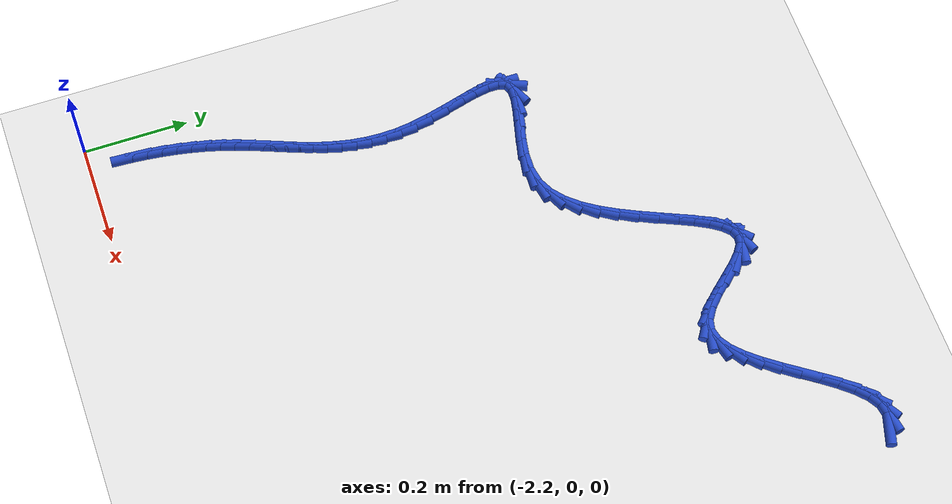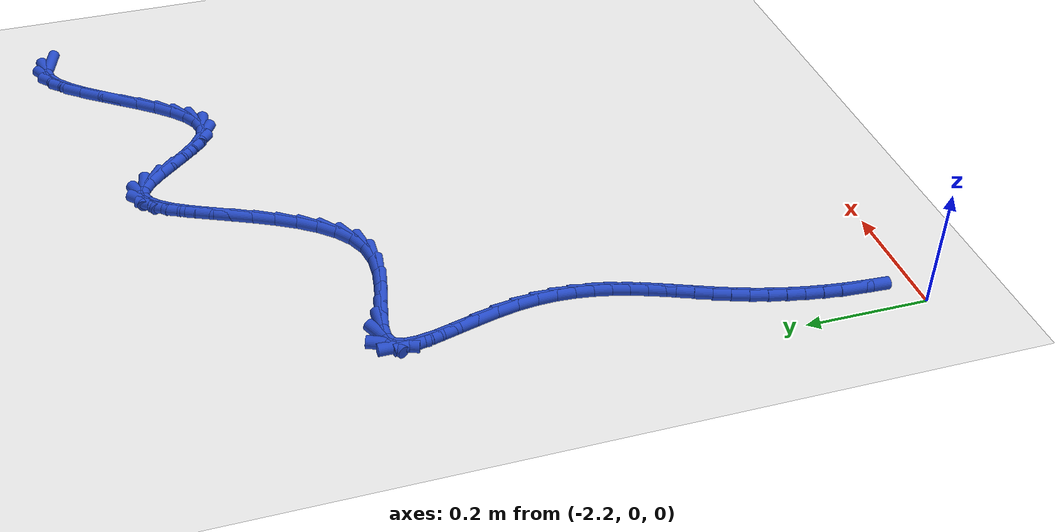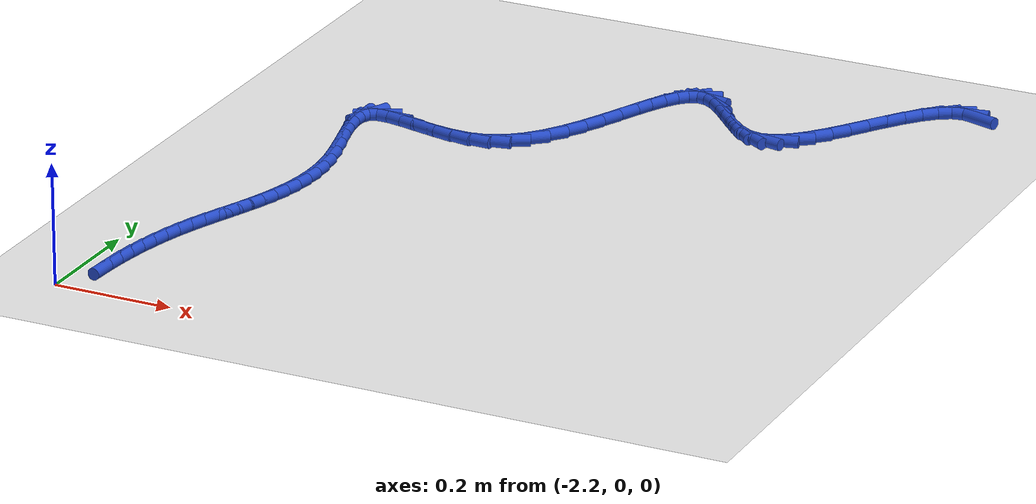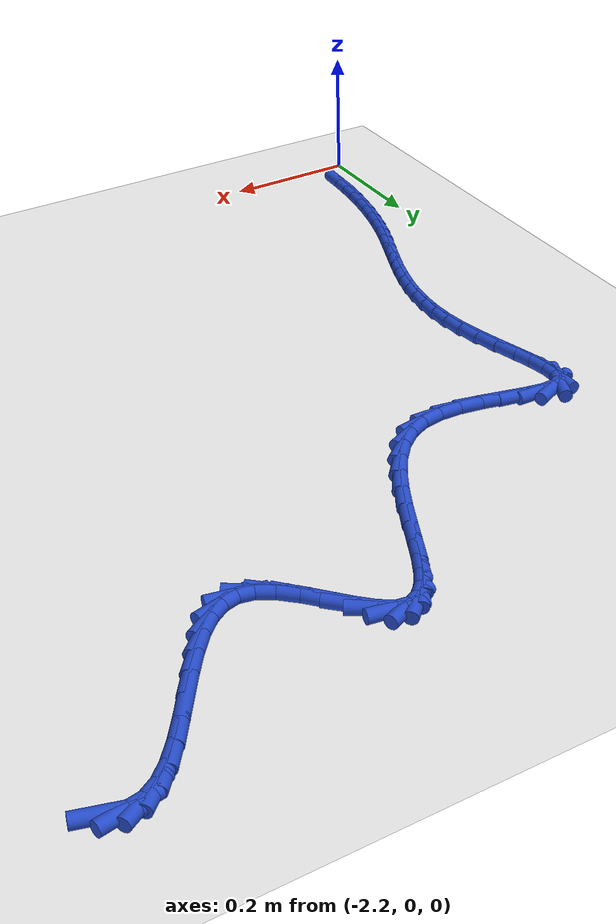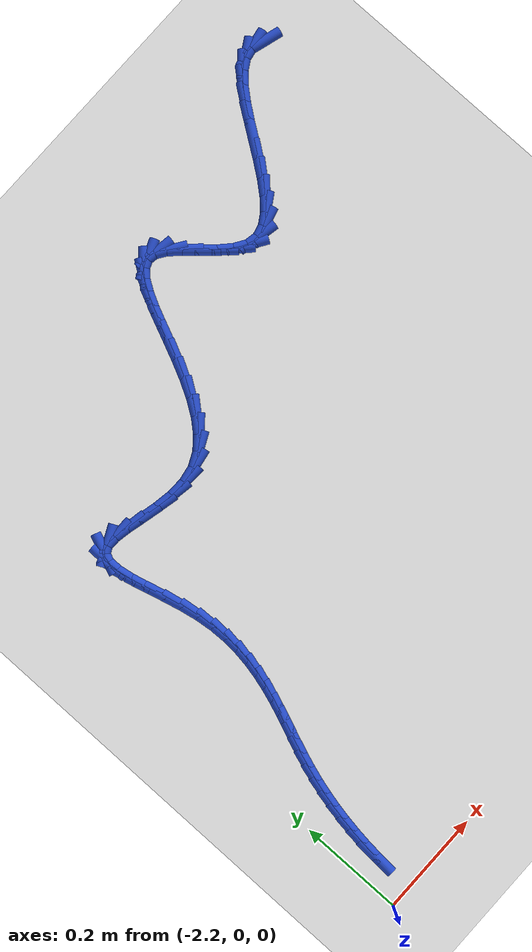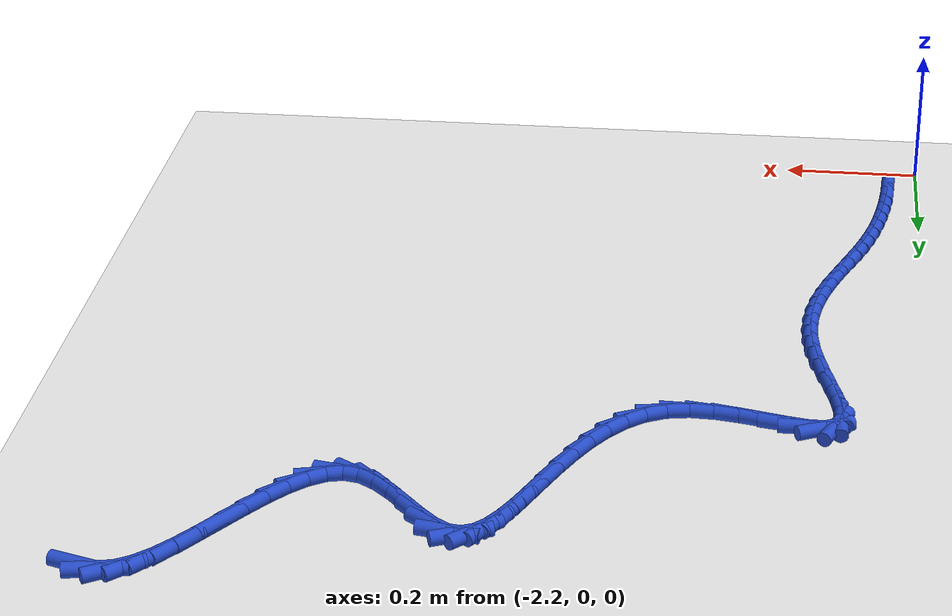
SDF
<sdf version="1.6">
 <world name="default">
  <model name="ground_plane">
   <static>1</static>
   <link name="link">
    <collision name="collision">
     <geometry><plane><normal>0 0 1</normal><size>100 100</size></plane></geometry>
     <surface><friction><ode><mu>100</mu><mu2>50</mu2></ode></friction></surface>
    </collision>
    <visual name="visual">
     <cast_shadows>0</cast_shadows>
     <geometry><plane><normal>0 0 1</normal><size>100 100</size></plane></geometry>
     <material>
      <script><uri>file://media/materials/scripts/gazebo.material</uri><name>Gazebo/WhiteGlow</name></script>
     </material>
    </visual>
   </link>
  </model>
  <model name="line">
   <link name="link_70">
    <pose>-1.1905179560982302 1.21783999540717 0.01 0 1.57 -0.2906038695124868</pose>
    <collision name="collision">
     <geometry><cylinder><radius>0.01</radius><length>0.08</length></cylinder></geometry>
    </collision>
    <visual name="visual">
     <material>
      <script><name>Gazebo/Blue</name><uri>file://media/materials/scripts/gazebo.material</uri></script>
     </material>
     <geometry><cylinder><radius>0.01</radius><length>0.08</length></cylinder></geometry>
    </visual>
   </link>
   <link name="link_71">
    <pose>-1.2112301351048769 1.224034398161707 0.01 0 1.57 0.17792155601959042</pose>
    <collision name="collision">
     <geometry><cylinder><radius>0.01</radius><length>0.08</length></cylinder></geometry>
    </collision>
    <visual name="visual">
     <material>
      <script><name>Gazebo/Blue</name><uri>file://media/materials/scripts/gazebo.material</uri></script>
     </material>
     <geometry><cylinder><radius>0.01</radius><length>0.08</length></cylinder></geometry>
    </visual>
   </link>
   <link name="link_72">
    <pose>-1.231911772914702 1.2203153625485805 0.01 0 1.57 0.538124500748423</pose>
    <collision name="collision">
     <geometry><cylinder><radius>0.01</radius><length>0.08</length></cylinder></geometry>
    </collision>
    <visual name="visual">
     <material>
      <script><name>Gazebo/Blue</name><uri>file://media/materials/scripts/gazebo.material</uri></script>
     </material>
     <geometry><cylinder><radius>0.01</radius><length>0.08</length></cylinder></geometry>
    </visual>
   </link>
   <link name="link_73">
    <pose>-1.2525903008696813 1.2079726989447712 0.01 0 1.57 0.7497829378314184</pose>
    <collision name="collision">
     <geometry><cylinder><radius>0.01</radius><length>0.08</length></cylinder></geometry>
    </collision>
    <visual name="visual">
     <material>
      <script><name>Gazebo/Blue</name><uri>file://media/materials/scripts/gazebo.material</uri></script>
     </material>
     <geometry><cylinder><radius>0.01</radius><length>0.08</length></cylinder></geometry>
    </visual>
   </link>
   <link name="link_74">
    <pose>-1.2732890721466708 1.1886981874010296 0.01 0 1.57 0.8685569368021363</pose>
    <collision name="collision">
     <geometry><cylinder><radius>0.01</radius><length>0.08</length></cylinder></geometry>
    </collision>
    <visual name="visual">
     <material>
      <script><name>Gazebo/Blue</name><uri>file://media/materials/scripts/gazebo.material</uri></script>
     </material>
     <geometry><cylinder><radius>0.01</radius><length>0.08</length></cylinder></geometry>
    </visual>
   </link>
   <link name="link_75">
    <pose>-1.2940314399225274 1.1641836079681072 0.01 0 1.57 0.9327413237555071</pose>
    <collision name="collision">
     <geometry><cylinder><radius>0.01</radius><length>0.08</length></cylinder></geometry>
    </collision>
    <visual name="visual">
     <material>
      <script><name>Gazebo/Blue</name><uri>file://media/materials/scripts/gazebo.material</uri></script>
     </material>
     <geometry><cylinder><radius>0.01</radius><length>0.08</length></cylinder></geometry>
    </visual>
   </link>
   <link name="link_76">
    <pose>-1.3148407573741077 1.1361207406967553 0.01 0 1.57 0.9610567395438101</pose>
    <collision name="collision">
     <geometry><cylinder><radius>0.01</radius><length>0.08</length></cylinder></geometry>
    </collision>
    <visual name="visual">
     <material>
      <script><name>Gazebo/Blue</name><uri>file://media/materials/scripts/gazebo.material</uri></script>
     </material>
     <geometry><cylinder><radius>0.01</radius><length>0.08</length></cylinder></geometry>
    </visual>
   </link>
   <link name="link_77">
    <pose>-1.3357403776782686 1.1062013656377245 0.01 0 1.57 0.9610882715544714</pose>
    <collision name="collision">
     <geometry><cylinder><radius>0.01</radius><length>0.08</length></cylinder></geometry>
    </collision>
    <visual name="visual">
     <material>
      <script><name>Gazebo/Blue</name><uri>file://media/materials/scripts/gazebo.material</uri></script>
     </material>
     <geometry><cylinder><radius>0.01</radius><length>0.08</length></cylinder></geometry>
    </visual>
   </link>
   <link name="link_78">
    <pose>-1.3567536540118648 1.076117262841766 0.01 0 1.57 0.9333172915132587</pose>
    <collision name="collision">
     <geometry><cylinder><radius>0.01</radius><length>0.08</length></cylinder></geometry>
    </collision>
    <visual name="visual">
     <material>
      <script><name>Gazebo/Blue</name><uri>file://media/materials/scripts/gazebo.material</uri></script>
     </material>
     <geometry><cylinder><radius>0.01</radius><length>0.08</length></cylinder></geometry>
    </visual>
   </link>
   <link name="link_79">
    <pose>-1.377903939551754 1.0475602123596304 0.01 0 1.57 0.8715225979296982</pose>
    <collision name="collision">
     <geometry><cylinder><radius>0.01</radius><length>0.08</length></cylinder></geometry>
    </collision>
    <visual name="visual">
     <material>
      <script><name>Gazebo/Blue</name><uri>file://media/materials/scripts/gazebo.material</uri></script>
     </material>
     <geometry><cylinder><radius>0.01</radius><length>0.08</length></cylinder></geometry>
    </visual>
   </link>
   <link name="link_80">
    <pose>-1.3992145874747925 1.0222219942420692 0.01 0 1.57 0.7599573827150676</pose>
    <collision name="collision">
     <geometry><cylinder><radius>0.01</radius><length>0.08</length></cylinder></geometry>
    </collision>
    <visual name="visual">
     <material>
      <script><name>Gazebo/Blue</name><uri>file://media/materials/scripts/gazebo.material</uri></script>
     </material>
     <geometry><cylinder><radius>0.01</radius><length>0.08</length></cylinder></geometry>
    </visual>
   </link>
   <link name="link_81">
    <pose>-1.4207089509578372 1.0017943885398326 0.01 0 1.57 0.5672279475120907</pose>
    <collision name="collision">
     <geometry><cylinder><radius>0.01</radius><length>0.08</length></cylinder></geometry>
    </collision>
    <visual name="visual">
     <material>
      <script><name>Gazebo/Blue</name><uri>file://media/materials/scripts/gazebo.material</uri></script>
     </material>
     <geometry><cylinder><radius>0.01</radius><length>0.08</length></cylinder></geometry>
    </visual>
   </link>
   <link name="link_82">
    <pose>-1.4424103831777435 0.9879691753036718 0.01 0 1.57 0.24704076534031452</pose>
    <collision name="collision">
     <geometry><cylinder><radius>0.01</radius><length>0.08</length></cylinder></geometry>
    </collision>
    <visual name="visual">
     <material>
      <script><name>Gazebo/Blue</name><uri>file://media/materials/scripts/gazebo.material</uri></script>
     </material>
     <geometry><cylinder><radius>0.01</radius><length>0.08</length></cylinder></geometry>
    </visual>
   </link>
   <link name="link_83">
    <pose>-1.4643422373113688 0.9824381345843383 0.01 0 1.57 -0.19712962538211304</pose>
    <collision name="collision">
     <geometry><cylinder><radius>0.01</radius><length>0.08</length></cylinder></geometry>
    </collision>
    <visual name="visual">
     <material>
      <script><name>Gazebo/Blue</name><uri>file://media/materials/scripts/gazebo.material</uri></script>
     </material>
     <geometry><cylinder><radius>0.01</radius><length>0.08</length></cylinder></geometry>
    </visual>
   </link>
   <link name="link_84">
    <pose>-1.4865262591945605 0.986868803811247 0.01 0 1.57 -0.5676000527672778</pose>
    <collision name="collision">
     <geometry><cylinder><radius>0.01</radius><length>0.08</length></cylinder></geometry>
    </collision>
    <visual name="visual">
     <material>
      <script><name>Gazebo/Blue</name><uri>file://media/materials/scripts/gazebo.material</uri></script>
     </material>
     <geometry><cylinder><radius>0.01</radius><length>0.08</length></cylinder></geometry>
    </visual>
   </link>
   <link name="link_85">
    <pose>-1.508863666527905 1.0011108622686788 0.01 0 1.57 -0.7543722065979216</pose>
    <collision name="collision">
     <geometry><cylinder><radius>0.01</radius><length>0.08</length></cylinder></geometry>
    </collision>
    <visual name="visual">
     <material>
      <script><name>Gazebo/Blue</name><uri>file://media/materials/scripts/gazebo.material</uri></script>
     </material>
     <geometry><cylinder><radius>0.01</radius><length>0.08</length></cylinder></geometry>
    </visual>
   </link>
   <link name="link_86">
    <pose>-1.5310535089182724 1.021964801472066 0.01 0 1.57 -0.8346601962940435</pose>
    <collision name="collision">
     <geometry><cylinder><radius>0.01</radius><length>0.08</length></cylinder></geometry>
    </collision>
    <visual name="visual">
     <material>
      <script><name>Gazebo/Blue</name><uri>file://media/materials/scripts/gazebo.material</uri></script>
     </material>
     <geometry><cylinder><radius>0.01</radius><length>0.08</length></cylinder></geometry>
    </visual>
   </link>
   <link name="link_87">
    <pose>-1.5527755185682799 1.0459397593820037 0.01 0 1.57 -0.8453009052203749</pose>
    <collision name="collision">
     <geometry><cylinder><radius>0.01</radius><length>0.08</length></cylinder></geometry>
    </collision>
    <visual name="visual">
     <material>
      <script><name>Gazebo/Blue</name><uri>file://media/materials/scripts/gazebo.material</uri></script>
     </material>
     <geometry><cylinder><radius>0.01</radius><length>0.08</length></cylinder></geometry>
    </visual>
   </link>
   <link name="link_88">
    <pose>-1.5737094276805443 1.069544873959086 0.01 0 1.57 -0.7833478333196037</pose>
    <collision name="collision">
     <geometry><cylinder><radius>0.01</radius><length>0.08</length></cylinder></geometry>
    </collision>
    <visual name="visual">
     <material>
      <script><name>Gazebo/Blue</name><uri>file://media/materials/scripts/gazebo.material</uri></script>
     </material>
     <geometry><cylinder><radius>0.01</radius><length>0.08</length></cylinder></geometry>
    </visual>
   </link>
   <link name="link_89">
    <pose>-1.593534968457681 1.0892892831639074 0.01 0 1.57 -0.5928325110588228</pose>
    <collision name="collision">
     <geometry><cylinder><radius>0.01</radius><length>0.08</length></cylinder></geometry>
    </collision>
    <visual name="visual">
     <material>
      <script><name>Gazebo/Blue</name><uri>file://media/materials/scripts/gazebo.material</uri></script>
     </material>
     <geometry><cylinder><radius>0.01</radius><length>0.08</length></cylinder></geometry>
    </visual>
   </link>
   <link name="link_90">
    <pose>-1.6119319546492148 1.1016827034170293 0.01 0 1.57 -0.1527809737404001</pose>
    <collision name="collision">
     <geometry><cylinder><radius>0.01</radius><length>0.08</length></cylinder></geometry>
    </collision>
    <visual name="visual">
     <material>
      <script><name>Gazebo/Blue</name><uri>file://media/materials/scripts/gazebo.material</uri></script>
     </material>
     <geometry><cylinder><radius>0.01</radius><length>0.08</length></cylinder></geometry>
    </visual>
   </link>
   <link name="link_91">
    <pose>-1.6287259380444379 1.1042686563935358 0.01 0 1.57 0.3986107977285948</pose>
    <collision name="collision">
     <geometry><cylinder><radius>0.01</radius><length>0.08</length></cylinder></geometry>
    </collision>
    <visual name="visual">
     <material>
      <script><name>Gazebo/Blue</name><uri>file://media/materials/scripts/gazebo.material</uri></script>
     </material>
     <geometry><cylinder><radius>0.01</radius><length>0.08</length></cylinder></geometry>
    </visual>
   </link>
   <link name="link_92">
    <pose>-1.6441887505630648 1.0977563900576166 0.01 0 1.57 0.7787538861293155</pose>
    <collision name="collision">
     <geometry><cylinder><radius>0.01</radius><length>0.08</length></cylinder></geometry>
    </collision>
    <visual name="visual">
     <material>
      <script><name>Gazebo/Blue</name><uri>file://media/materials/scripts/gazebo.material</uri></script>
     </material>
     <geometry><cylinder><radius>0.01</radius><length>0.08</length></cylinder></geometry>
    </visual>
   </link>
   <link name="link_93">
    <pose>-1.6586773568204445 1.0834590484339426 0.01 0 1.57 0.9819547717365439</pose>
    <collision name="collision">
     <geometry><cylinder><radius>0.01</radius><length>0.08</length></cylinder></geometry>
    </collision>
    <visual name="visual">
     <material>
      <script><name>Gazebo/Blue</name><uri>file://media/materials/scripts/gazebo.material</uri></script>
     </material>
     <geometry><cylinder><radius>0.01</radius><length>0.08</length></cylinder></geometry>
    </visual>
   </link>
   <link name="link_94">
    <pose>-1.6725487214319237 1.062689775547183 0.01 0 1.57 1.087383913995369</pose>
    <collision name="collision">
     <geometry><cylinder><radius>0.01</radius><length>0.08</length></cylinder></geometry>
    </collision>
    <visual name="visual">
     <material>
      <script><name>Gazebo/Blue</name><uri>file://media/materials/scripts/gazebo.material</uri></script>
     </material>
     <geometry><cylinder><radius>0.01</radius><length>0.08</length></cylinder></geometry>
    </visual>
   </link>
   <link name="link_95">
    <pose>-1.6861598090128505 1.0367617154220081 0.01 0 1.57 1.1393285432176934</pose>
    <collision name="collision">
     <geometry><cylinder><radius>0.01</radius><length>0.08</length></cylinder></geometry>
    </collision>
    <visual name="visual">
     <material>
      <script><name>Gazebo/Blue</name><uri>file://media/materials/scripts/gazebo.material</uri></script>
     </material>
     <geometry><cylinder><radius>0.01</radius><length>0.08</length></cylinder></geometry>
    </visual>
   </link>
   <link name="link_96">
    <pose>-1.6998675841785749 1.0069880120830887 0.01 0 1.57 1.1576725747561032</pose>
    <collision name="collision">
     <geometry><cylinder><radius>0.01</radius><length>0.08</length></cylinder></geometry>
    </collision>
    <visual name="visual">
     <material>
      <script><name>Gazebo/Blue</name><uri>file://media/materials/scripts/gazebo.material</uri></script>
     </material>
     <geometry><cylinder><radius>0.01</radius><length>0.08</length></cylinder></geometry>
    </visual>
   </link>
   <link name="link_97">
    <pose>-1.7140290115444432 0.9746818095550941 0.01 0 1.57 1.150785123153018</pose>
    <collision name="collision">
     <geometry><cylinder><radius>0.01</radius><length>0.08</length></cylinder></geometry>
    </collision>
    <visual name="visual">
     <material>
      <script><name>Gazebo/Blue</name><uri>file://media/materials/scripts/gazebo.material</uri></script>
     </material>
     <geometry><cylinder><radius>0.01</radius><length>0.08</length></cylinder></geometry>
    </visual>
   </link>
   <link name="link_98">
    <pose>-1.7290010557258049 0.9411562518626947 0.01 0 1.57 1.1210330506621502</pose>
    <collision name="collision">
     <geometry><cylinder><radius>0.01</radius><length>0.08</length></cylinder></geometry>
    </collision>
    <visual name="visual">
     <material>
      <script><name>Gazebo/Blue</name><uri>file://media/materials/scripts/gazebo.material</uri></script>
     </material>
     <geometry><cylinder><radius>0.01</radius><length>0.08</length></cylinder></geometry>
    </visual>
   </link>
   <link name="link_99">
    <pose>-1.7451406813380073 0.9077244830305606 0.01 0 1.57 1.066742964812412</pose>
    <collision name="collision">
     <geometry><cylinder><radius>0.01</radius><length>0.08</length></cylinder></geometry>
    </collision>
    <visual name="visual">
     <material>
      <script><name>Gazebo/Blue</name><uri>file://media/materials/scripts/gazebo.material</uri></script>
     </material>
     <geometry><cylinder><radius>0.01</radius><length>0.08</length></cylinder></geometry>
    </visual>
   </link>
   <link name="link_100">
    <pose>-1.7628048529963987 0.8756996470833619 0.01 0 1.57 0.9825769700087346</pose>
    <collision name="collision">
     <geometry><cylinder><radius>0.01</radius><length>0.08</length></cylinder></geometry>
    </collision>
    <visual name="visual">
     <material>
      <script><name>Gazebo/Blue</name><uri>file://media/materials/scripts/gazebo.material</uri></script>
     </material>
     <geometry><cylinder><radius>0.01</radius><length>0.08</length></cylinder></geometry>
    </visual>
   </link>
   <link name="link_101">
    <pose>-1.7823505353163278 0.8463948880457686 0.01 0 1.57 0.8593746829179938</pose>
    <collision name="collision">
     <geometry><cylinder><radius>0.01</radius><length>0.08</length></cylinder></geometry>
    </collision>
    <visual name="visual">
     <material>
      <script><name>Gazebo/Blue</name><uri>file://media/materials/scripts/gazebo.material</uri></script>
     </material>
     <geometry><cylinder><radius>0.01</radius><length>0.08</length></cylinder></geometry>
    </visual>
   </link>
   <link name="link_102">
    <pose>-1.8041346929131419 0.8211233499424513 0.01 0 1.57 0.6851943787268671</pose>
    <collision name="collision">
     <geometry><cylinder><radius>0.01</radius><length>0.08</length></cylinder></geometry>
    </collision>
    <visual name="visual">
     <material>
      <script><name>Gazebo/Blue</name><uri>file://media/materials/scripts/gazebo.material</uri></script>
     </material>
     <geometry><cylinder><radius>0.01</radius><length>0.08</length></cylinder></geometry>
    </visual>
   </link>
   <link name="link_103">
    <pose>-1.8285142904021905 0.8011981767980791 0.01 0 1.57 0.4518613509326918</pose>
    <collision name="collision">
     <geometry><cylinder><radius>0.01</radius><length>0.08</length></cylinder></geometry>
    </collision>
    <visual name="visual">
     <material>
      <script><name>Gazebo/Blue</name><uri>file://media/materials/scripts/gazebo.material</uri></script>
     </material>
     <geometry><cylinder><radius>0.01</radius><length>0.08</length></cylinder></geometry>
    </visual>
   </link>
   <link name="link_104">
    <pose>-1.8558462923988206 0.7879325126373227 0.01 0 1.57 0.1790913475109051</pose>
    <collision name="collision">
     <geometry><cylinder><radius>0.01</radius><length>0.08</length></cylinder></geometry>
    </collision>
    <visual name="visual">
     <material>
      <script><name>Gazebo/Blue</name><uri>file://media/materials/scripts/gazebo.material</uri></script>
     </material>
     <geometry><cylinder><radius>0.01</radius><length>0.08</length></cylinder></geometry>
    </visual>
   </link>
   <link name="link_105">
    <pose>-1.8863647912788006 0.7824077199952238 0.01 0 1.57 -0.03448245643375636</pose>
    <collision name="collision">
     <geometry><cylinder><radius>0.01</radius><length>0.08</length></cylinder></geometry>
    </collision>
    <visual name="visual">
     <material>
      <script><name>Gazebo/Blue</name><uri>file://media/materials/scripts/gazebo.material</uri></script>
     </material>
     <geometry><cylinder><radius>0.01</radius><length>0.08</length></cylinder></geometry>
    </visual>
   </link>
   <link name="link_106">
    <pose>-1.9191554838623974 0.78353887198746 0.01 0 1.57 -0.16321234477778082</pose>
    <collision name="collision">
     <geometry><cylinder><radius>0.01</radius><length>0.08</length></cylinder></geometry>
    </collision>
    <visual name="visual">
     <material>
      <script><name>Gazebo/Blue</name><uri>file://media/materials/scripts/gazebo.material</uri></script>
     </material>
     <geometry><cylinder><radius>0.01</radius><length>0.08</length></cylinder></geometry>
    </visual>
   </link>
   <link name="link_107">
    <pose>-1.9526775426981908 0.7890591903247365 0.01 0 1.57 -0.22921188614324312</pose>
    <collision name="collision">
     <geometry><cylinder><radius>0.01</radius><length>0.08</length></cylinder></geometry>
    </collision>
    <visual name="visual">
     <material>
      <script><name>Gazebo/Blue</name><uri>file://media/materials/scripts/gazebo.material</uri></script>
     </material>
     <geometry><cylinder><radius>0.01</radius><length>0.08</length></cylinder></geometry>
    </visual>
   </link>
   <link name="link_108">
    <pose>-1.9853838135797384 0.796689962169253 0.01 0 1.57 -0.2411499435489797</pose>
    <collision name="collision">
     <geometry><cylinder><radius>0.01</radius><length>0.08</length></cylinder></geometry>
    </collision>
    <visual name="visual">
     <material>
      <script><name>Gazebo/Blue</name><uri>file://media/materials/scripts/gazebo.material</uri></script>
     </material>
     <geometry><cylinder><radius>0.01</radius><length>0.08</length></cylinder></geometry>
    </visual>
   </link>
   <link name="link_109">
    <pose>-2.0157271423006007 0.8041524746832108 0.01 0 1.57 -0.18751460277190365</pose>
    <collision name="collision">
     <geometry><cylinder><radius>0.01</radius><length>0.08</length></cylinder></geometry>
    </collision>
    <visual name="visual">
     <material>
      <script><name>Gazebo/Blue</name><uri>file://media/materials/scripts/gazebo.material</uri></script>
     </material>
     <geometry><cylinder><radius>0.01</radius><length>0.08</length></cylinder></geometry>
    </visual>
   </link>
   <link name="link_110">
    <pose>-2.042160374654334 0.8091680150288088 0.01 0 1.57 -0.013817560263368075</pose>
    <collision name="collision">
     <geometry><cylinder><radius>0.01</radius><length>0.08</length></cylinder></geometry>
    </collision>
    <visual name="visual">
     <material>
      <script><name>Gazebo/Blue</name><uri>file://media/materials/scripts/gazebo.material</uri></script>
     </material>
     <geometry><cylinder><radius>0.01</radius><length>0.08</length></cylinder></geometry>
    </visual>
   </link>
   <link name="link_111">
    <pose>-2.0631363564344998 0.8094578703682485 0.01 0 1.57 0.447551578379677</pose>
    <collision name="collision">
     <geometry><cylinder><radius>0.01</radius><length>0.08</length></cylinder></geometry>
    </collision>
    <visual name="visual">
     <material>
      <script><name>Gazebo/Blue</name><uri>file://media/materials/scripts/gazebo.material</uri></script>
     </material>
     <geometry><cylinder><radius>0.01</radius><length>0.08</length></cylinder></geometry>
    </visual>
   </link>
   <link name="link_112">
    <pose>-2.077112510731202 0.8027487728403483 0.01 0 1.57 1.1684990110235252</pose>
    <collision name="collision">
     <geometry><cylinder><radius>0.01</radius><length>0.08</length></cylinder></geometry>
    </collision>
    <visual name="visual">
     <material>
      <script><name>Gazebo/Blue</name><uri>file://media/materials/scripts/gazebo.material</uri></script>
     </material>
     <geometry><cylinder><radius>0.01</radius><length>0.08</length></cylinder></geometry>
    </visual>
   </link>
   <link name="link_113">
    <pose>-2.083453441413561 0.7878466020850585 0.01 0 1.57 1.5678690925276422</pose>
    <collision name="collision">
     <geometry><cylinder><radius>0.01</radius><length>0.08</length></cylinder></geometry>
    </collision>
    <visual name="visual">
     <material>
      <script><name>Gazebo/Blue</name><uri>file://media/materials/scripts/gazebo.material</uri></script>
     </material>
     <geometry><cylinder><radius>0.01</radius><length>0.08</length></cylinder></geometry>
    </visual>
   </link>
   <link name="link_114">
    <pose>-2.0835175994302007 0.7659290418449505 0.01 0 1.57 -1.4050911879733772</pose>
    <collision name="collision">
     <geometry><cylinder><radius>0.01</radius><length>0.08</length></cylinder></geometry>
    </collision>
    <visual name="visual">
     <material>
      <script><name>Gazebo/Blue</name><uri>file://media/materials/scripts/gazebo.material</uri></script>
     </material>
     <geometry><cylinder><radius>0.01</radius><length>0.08</length></cylinder></geometry>
    </visual>
   </link>
   <link name="link_115">
    <pose>-2.078928598124134 0.7384892028887369 0.01 0 1.57 -1.3332696469900294</pose>
    <collision name="collision">
     <geometry><cylinder><radius>0.01</radius><length>0.08</length></cylinder></geometry>
    </collision>
    <visual name="visual">
     <material>
      <script><name>Gazebo/Blue</name><uri>file://media/materials/scripts/gazebo.material</uri></script>
     </material>
     <geometry><cylinder><radius>0.01</radius><length>0.08</length></cylinder></geometry>
    </visual>
   </link>
   <link name="link_116">
    <pose>-2.0713100508383726 0.7070201959851311 0.01 0 1.57 -1.31138962968632</pose>
    <collision name="collision">
     <geometry><cylinder><radius>0.01</radius><length>0.08</length></cylinder></geometry>
    </collision>
    <visual name="visual">
     <material>
      <script><name>Gazebo/Blue</name><uri>file://media/materials/scripts/gazebo.material</uri></script>
     </material>
     <geometry><cylinder><radius>0.01</radius><length>0.08</length></cylinder></geometry>
    </visual>
   </link>
   <link name="link_117">
    <pose>-2.0622855709159285 0.6730151319028465 0.01 0 1.57 -1.3246150617927384</pose>
    <collision name="collision">
     <geometry><cylinder><radius>0.01</radius><length>0.08</length></cylinder></geometry>
    </collision>
    <visual name="visual">
     <material>
      <script><name>Gazebo/Blue</name><uri>file://media/materials/scripts/gazebo.material</uri></script>
     </material>
     <geometry><cylinder><radius>0.01</radius><length>0.08</length></cylinder></geometry>
    </visual>
   </link>
   <link name="link_118">
    <pose>-2.0534787716998135 0.6379671214105954 0.01 0 1.57 -1.3721216640086242</pose>
    <collision name="collision">
     <geometry><cylinder><radius>0.01</radius><length>0.08</length></cylinder></geometry>
    </collision>
    <visual name="visual">
     <material>
      <script><name>Gazebo/Blue</name><uri>file://media/materials/scripts/gazebo.material</uri></script>
     </material>
     <geometry><cylinder><radius>0.01</radius><length>0.08</length></cylinder></geometry>
    </visual>
   </link>
   <link name="link_119">
    <pose>-2.046513145562832 0.6033691722955979 0.01 0 1.57 -1.4529694436194935</pose>
    <collision name="collision">
     <geometry><cylinder><radius>0.01</radius><length>0.08</length></cylinder></geometry>
    </collision>
    <visual name="visual">
     <material>
      <script><name>Gazebo/Blue</name><uri>file://media/materials/scripts/gazebo.material</uri></script>
     </material>
     <geometry><cylinder><radius>0.01</radius><length>0.08</length></cylinder></geometry>
    </visual>
   </link>
   <link name="link_120">
    <pose>-2.042606762261063 0.5703691575599836 0.01 0 1.57 -1.5408774049527236</pose>
    <collision name="collision">
     <geometry><cylinder><radius>0.01</radius><length>0.08</length></cylinder></geometry>
    </collision>
    <visual name="visual">
     <material>
      <script><name>Gazebo/Blue</name><uri>file://media/materials/scripts/gazebo.material</uri></script>
     </material>
     <geometry><cylinder><radius>0.01</radius><length>0.08</length></cylinder></geometry>
    </visual>
   </link>
   <link name="link_121">
    <pose>-2.0416679499085513 0.5389999719548001 0.01 0 1.57 1.5149546053833143</pose>
    <collision name="collision">
     <geometry><cylinder><radius>0.01</radius><length>0.08</length></cylinder></geometry>
    </collision>
    <visual name="visual">
     <material>
      <script><name>Gazebo/Blue</name><uri>file://media/materials/scripts/gazebo.material</uri></script>
     </material>
     <geometry><cylinder><radius>0.01</radius><length>0.08</length></cylinder></geometry>
    </visual>
   </link>
   <link name="link_122">
    <pose>-2.0433410431389483 0.5090697735504994 0.01 0 1.57 1.4346522981938767</pose>
    <collision name="collision">
     <geometry><cylinder><radius>0.01</radius><length>0.08</length></cylinder></geometry>
    </collision>
    <visual name="visual">
     <material>
      <script><name>Gazebo/Blue</name><uri>file://media/materials/scripts/gazebo.material</uri></script>
     </material>
     <geometry><cylinder><radius>0.01</radius><length>0.08</length></cylinder></geometry>
    </visual>
   </link>
   <link name="link_123">
    <pose>-2.047270376585901 0.4803867204175332 0.01 0 1.57 1.3628308620070884</pose>
    <collision name="collision">
     <geometry><cylinder><radius>0.01</radius><length>0.08</length></cylinder></geometry>
    </collision>
    <visual name="visual">
     <material>
      <script><name>Gazebo/Blue</name><uri>file://media/materials/scripts/gazebo.material</uri></script>
     </material>
     <geometry><cylinder><radius>0.01</radius><length>0.08</length></cylinder></geometry>
    </visual>
   </link>
   <link name="link_124">
    <pose>-2.0531002848830604 0.45275897062635234 0.01 0 1.57 1.3019217006745467</pose>
    <collision name="collision">
     <geometry><cylinder><radius>0.01</radius><length>0.08</length></cylinder></geometry>
    </collision>
    <visual name="visual">
     <material>
      <script><name>Gazebo/Blue</name><uri>file://media/materials/scripts/gazebo.material</uri></script>
     </material>
     <geometry><cylinder><radius>0.01</radius><length>0.08</length></cylinder></geometry>
    </visual>
   </link>
   <link name="link_125">
    <pose>-2.0604751026640766 0.4259946822474092 0.01 0 1.57 1.2536573663895072</pose>
    <collision name="collision">
     <geometry><cylinder><radius>0.01</radius><length>0.08</length></cylinder></geometry>
    </collision>
    <visual name="visual">
     <material>
      <script><name>Gazebo/Blue</name><uri>file://media/materials/scripts/gazebo.material</uri></script>
     </material>
     <geometry><cylinder><radius>0.01</radius><length>0.08</length></cylinder></geometry>
    </visual>
   </link>
   <link name="link_126">
    <pose>-2.0690391645625987 0.3999020133511552 0.01 0 1.57 1.2191365486857628</pose>
    <collision name="collision">
     <geometry><cylinder><radius>0.01</radius><length>0.08</length></cylinder></geometry>
    </collision>
    <visual name="visual">
     <material>
      <script><name>Gazebo/Blue</name><uri>file://media/materials/scripts/gazebo.material</uri></script>
     </material>
     <geometry><cylinder><radius>0.01</radius><length>0.08</length></cylinder></geometry>
    </visual>
   </link>
   <link name="link_127">
    <pose>-2.0784368052122755 0.374289122008042 0.01 0 1.57 1.1989806518731447</pose>
    <collision name="collision">
     <geometry><cylinder><radius>0.01</radius><length>0.08</length></cylinder></geometry>
    </collision>
    <visual name="visual">
     <material>
      <script><name>Gazebo/Blue</name><uri>file://media/materials/scripts/gazebo.material</uri></script>
     </material>
     <geometry><cylinder><radius>0.01</radius><length>0.08</length></cylinder></geometry>
    </visual>
   </link>
   <link name="link_128">
    <pose>-2.0883123592467587 0.34896416628852134 0.01 0 1.57 1.193497233480115</pose>
    <collision name="collision">
     <geometry><cylinder><radius>0.01</radius><length>0.08</length></cylinder></geometry>
    </collision>
    <visual name="visual">
     <material>
      <script><name>Gazebo/Blue</name><uri>file://media/materials/scripts/gazebo.material</uri></script>
     </material>
     <geometry><cylinder><radius>0.01</radius><length>0.08</length></cylinder></geometry>
    </visual>
   </link>
   <link name="link_129">
    <pose>-2.0983101612996955 0.32373530426304464 0.01 0 1.57 1.2027920299400754</pose>
    <collision name="collision">
     <geometry><cylinder><radius>0.01</radius><length>0.08</length></cylinder></geometry>
    </collision>
    <visual name="visual">
     <material>
      <script><name>Gazebo/Blue</name><uri>file://media/materials/scripts/gazebo.material</uri></script>
     </material>
     <geometry><cylinder><radius>0.01</radius><length>0.08</length></cylinder></geometry>
    </visual>
   </link>
   <link name="link_130">
    <pose>-2.1080745460047368 0.2984106940020639 0.01 0 1.57 1.2268001321359199</pose>
    <collision name="collision">
     <geometry><cylinder><radius>0.01</radius><length>0.08</length></cylinder></geometry>
    </collision>
    <visual name="visual">
     <material>
      <script><name>Gazebo/Blue</name><uri>file://media/materials/scripts/gazebo.material</uri></script>
     </material>
     <geometry><cylinder><radius>0.01</radius><length>0.08</length></cylinder></geometry>
    </visual>
   </link>
   <link name="link_131">
    <pose>-2.1172498479955317 0.2727984935760305 0.01 0 1.57 1.264197165749623</pose>
    <collision name="collision">
     <geometry><cylinder><radius>0.01</radius><length>0.08</length></cylinder></geometry>
    </collision>
    <visual name="visual">
     <material>
      <script><name>Gazebo/Blue</name><uri>file://media/materials/scripts/gazebo.material</uri></script>
     </material>
     <geometry><cylinder><radius>0.01</radius><length>0.08</length></cylinder></geometry>
    </visual>
   </link>
   <link name="link_132">
    <pose>-2.1255050661262533 0.24672239308081476 0.01 0 1.57 1.3049913279485716</pose>
    <collision name="collision">
     <geometry><cylinder><radius>0.01</radius><length>0.08</length></cylinder></geometry>
    </collision>
    <visual name="visual">
     <material>
      <script><name>Gazebo/Blue</name><uri>file://media/materials/scripts/gazebo.material</uri></script>
     </material>
     <geometry><cylinder><radius>0.01</radius><length>0.08</length></cylinder></geometry>
    </visual>
   </link>
   <link name="link_133">
    <pose>-2.1327390889359163 0.2201508531484244 0.01 0 1.57 1.3439432298947587</pose>
    <collision name="collision">
     <geometry><cylinder><radius>0.01</radius><length>0.08</length></cylinder></geometry>
    </collision>
    <visual name="visual">
     <material>
      <script><name>Gazebo/Blue</name><uri>file://media/materials/scripts/gazebo.material</uri></script>
     </material>
     <geometry><cylinder><radius>0.01</radius><length>0.08</length></cylinder></geometry>
    </visual>
   </link>
   <link name="link_134">
    <pose>-2.1389759504340913 0.19313114341388982 0.01 0 1.57 1.3810912910494435</pose>
    <collision name="collision">
     <geometry><cylinder><radius>0.01</radius><length>0.08</length></cylinder></geometry>
    </collision>
    <visual name="visual">
     <material>
      <script><name>Gazebo/Blue</name><uri>file://media/materials/scripts/gazebo.material</uri></script>
     </material>
     <geometry><cylinder><radius>0.01</radius><length>0.08</length></cylinder></geometry>
    </visual>
   </link>
   <link name="link_135">
    <pose>-2.144240939197278 0.16571132356215895 0.01 0 1.57 1.4165360562916178</pose>
    <collision name="collision">
     <geometry><cylinder><radius>0.01</radius><length>0.08</length></cylinder></geometry>
    </collision>
    <visual name="visual">
     <material>
      <script><name>Gazebo/Blue</name><uri>file://media/materials/scripts/gazebo.material</uri></script>
     </material>
     <geometry><cylinder><radius>0.01</radius><length>0.08</length></cylinder></geometry>
    </visual>
   </link>
   <link name="link_136">
    <pose>-2.1485593438019785 0.13793945327818052 0.01 0 1.57 1.4503841762410927</pose>
    <collision name="collision">
     <geometry><cylinder><radius>0.01</radius><length>0.08</length></cylinder></geometry>
    </collision>
    <visual name="visual">
     <material>
      <script><name>Gazebo/Blue</name><uri>file://media/materials/scripts/gazebo.material</uri></script>
     </material>
     <geometry><cylinder><radius>0.01</radius><length>0.08</length></cylinder></geometry>
    </visual>
   </link>
   <link name="link_137">
    <pose>-2.1519564528246895 0.1098635922469044 0.01 0 1.57 1.4827455941941128</pose>
    <collision name="collision">
     <geometry><cylinder><radius>0.01</radius><length>0.08</length></cylinder></geometry>
    </collision>
    <visual name="visual">
     <material>
      <script><name>Gazebo/Blue</name><uri>file://media/materials/scripts/gazebo.material</uri></script>
     </material>
     <geometry><cylinder><radius>0.01</radius><length>0.08</length></cylinder></geometry>
    </visual>
   </link>
   <link name="link_138">
    <pose>-2.154457554841912 0.08153180015327743 0.01 0 1.57 1.5137314116439406</pose>
    <collision name="collision">
     <geometry><cylinder><radius>0.01</radius><length>0.08</length></cylinder></geometry>
    </collision>
    <visual name="visual">
     <material>
      <script><name>Gazebo/Blue</name><uri>file://media/materials/scripts/gazebo.material</uri></script>
     </material>
     <geometry><cylinder><radius>0.01</radius><length>0.08</length></cylinder></geometry>
    </visual>
   </link>
  </model>
 </world>
</sdf>
